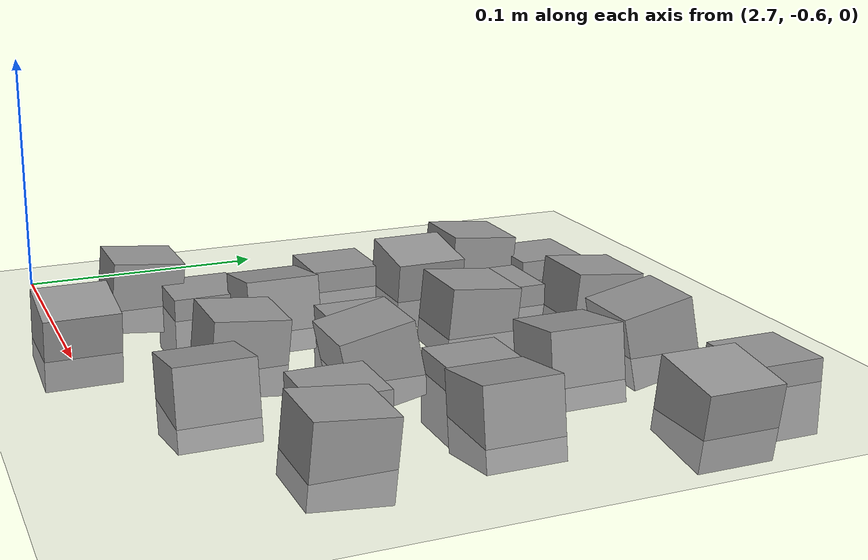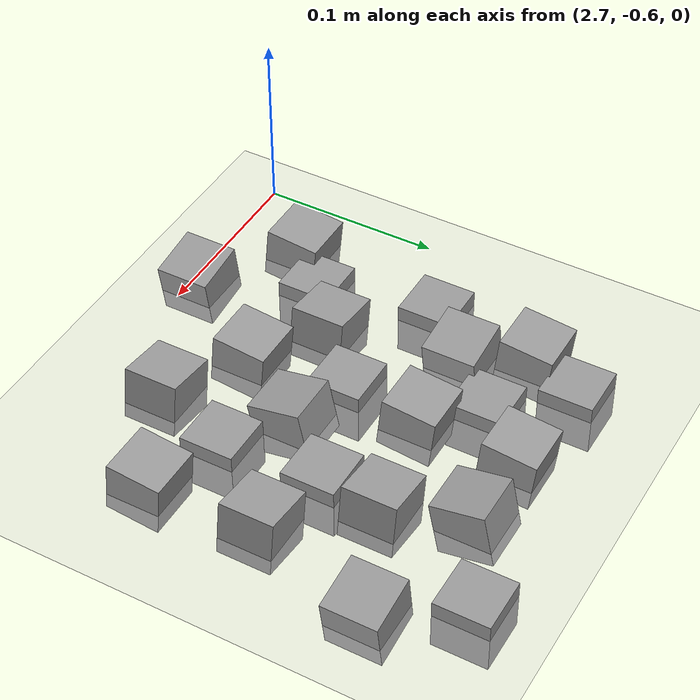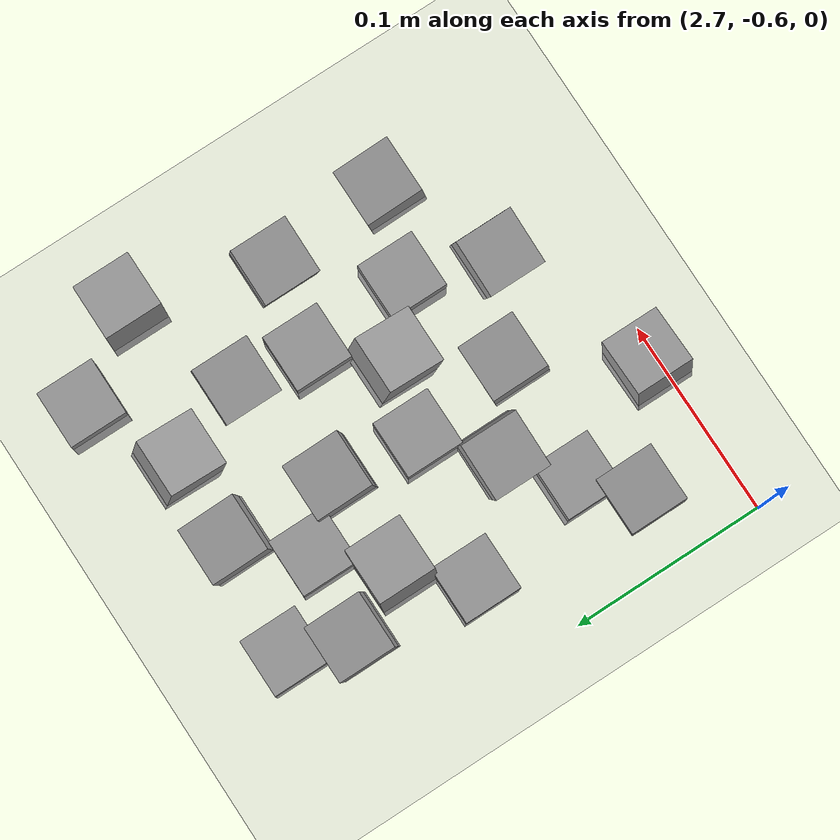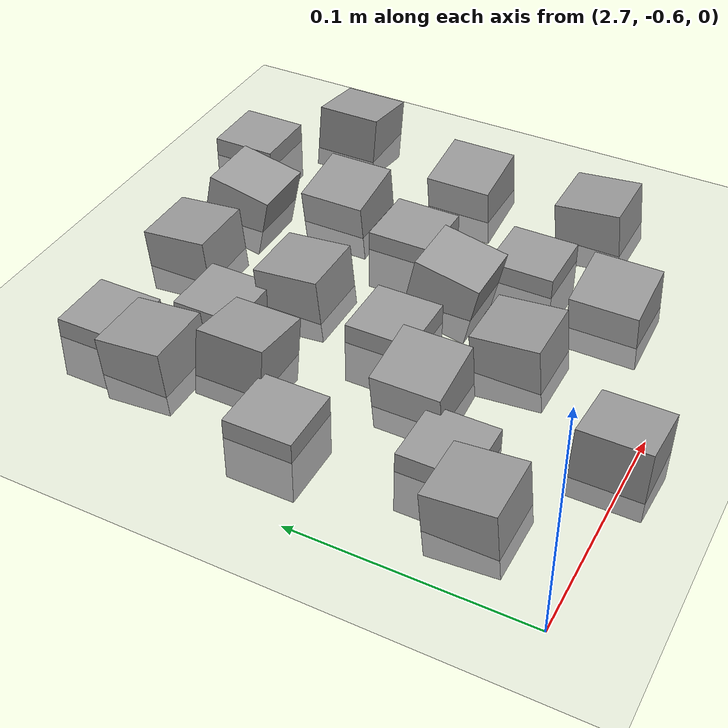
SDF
<sdf version="1.7">
 <world name="default">
  <model name="ground_plane">
   <static>1</static>
   <link name="link">
    <collision name="collision">
     <geometry><plane><normal>0 0 1</normal><size>100 100</size></plane></geometry>
     <surface><friction><ode><mu>100</mu><mu2>50</mu2></ode></friction></surface>
    </collision>
    <visual name="visual">
     <cast_shadows>0</cast_shadows>
     <geometry><plane><normal>0 0 1</normal><size>100 100</size></plane></geometry>
     <material>
      <script><uri>file://media/materials/scripts/gazebo.material</uri><name>Gazebo/Grey</name></script>
     </material>
    </visual>
   </link>
  </model>
  <model name="stone_road_9">
   <link name="link_0_clone_13">
    <inertial>
     <mass>1</mass>
     <inertia>
      <ixx>0.166667</ixx>
      <ixy>0</ixy>
      <ixz>0</ixz>
      <iyy>0.166667</iyy>
      <iyz>0</iyz>
      <izz>0.166667</izz>
     </inertia>
    </inertial>
    <pose>0.107601 -0.134881 0.003778 0.2 -0 0</pose>
    <kinematic>1</kinematic>
    <visual name="visual">
     <geometry><box><size>0.03 0.03 0.03</size></box></geometry>
     <material>
      <lighting>1</lighting>
      <script><uri>file://media/materials/scripts/gazebo.material</uri><name>Gazebo/Grey</name></script>
      <shader type="pixel"><normal_map>__default__</normal_map></shader>
      <ambient>0.3 0.3 0.3 1</ambient>
      <diffuse>0.7 0.7 0.7 1</diffuse>
      <specular>0.01 0.01 0.01 1</specular>
      <emissive>0 0 0 1</emissive>
     </material>
    </visual>
    <collision name="collision">
     <geometry><box><size>0.03 0.03 0.03</size></box></geometry>
     <surface>
      <friction>
       <ode><mu>1</mu><mu2>1</mu2><fdir1>0 0 0</fdir1><slip1>0</slip1><slip2>0</slip2></ode>
       <torsional>
        <coefficient>1</coefficient>
        <patch_radius>0</patch_radius>
        <surface_radius>0</surface_radius>
        <use_patch_radius>1</use_patch_radius>
        <ode><slip>0</slip></ode>
       </torsional>
      </friction>
      <bounce><restitution_coefficient>0</restitution_coefficient><threshold>1e+06</threshold></bounce>
      <contact>
       <collide_without_contact>0</collide_without_contact>
       <collide_without_contact_bitmask>1</collide_without_contact_bitmask>
       <collide_bitmask>1</collide_bitmask>
       <ode>
        <soft_cfm>0</soft_cfm>
        <soft_erp>0.2</soft_erp>
        <kp>1e+13</kp>
        <kd>1</kd>
        <max_vel>0.01</max_vel>
        <min_depth>0</min_depth>
       </ode>
       <bullet>
        <split_impulse>1</split_impulse>
        <split_impulse_penetration_threshold>-0.01</split_impulse_penetration_threshold>
        <soft_cfm>0</soft_cfm>
        <soft_erp>0.2</soft_erp>
        <kp>1e+13</kp>
        <kd>1</kd>
       </bullet>
      </contact>
     </surface>
    </collision>
   </link>
   <link name="link_0_clone_2_clone_0">
    <inertial>
     <mass>1</mass>
     <inertia>
      <ixx>0.166667</ixx>
      <ixy>0</ixy>
      <ixz>0</ixz>
      <iyy>0.166667</iyy>
      <iyz>0</iyz>
      <izz>0.166667</izz>
     </inertia>
    </inertial>
    <pose>0.026852 -0.0813 0.003778 0 0.15 0</pose>
    <kinematic>1</kinematic>
    <visual name="visual">
     <geometry><box><size>0.03 0.03 0.03</size></box></geometry>
     <material>
      <lighting>1</lighting>
      <script><uri>file://media/materials/scripts/gazebo.material</uri><name>Gazebo/Grey</name></script>
      <shader type="pixel"><normal_map>__default__</normal_map></shader>
      <ambient>0.3 0.3 0.3 1</ambient>
      <diffuse>0.7 0.7 0.7 1</diffuse>
      <specular>0.01 0.01 0.01 1</specular>
      <emissive>0 0 0 1</emissive>
     </material>
    </visual>
    <collision name="collision">
     <geometry><box><size>0.03 0.03 0.03</size></box></geometry>
     <surface>
      <friction>
       <ode><mu>1</mu><mu2>1</mu2><fdir1>0 0 0</fdir1><slip1>0</slip1><slip2>0</slip2></ode>
       <torsional>
        <coefficient>1</coefficient>
        <patch_radius>0</patch_radius>
        <surface_radius>0</surface_radius>
        <use_patch_radius>1</use_patch_radius>
        <ode><slip>0</slip></ode>
       </torsional>
      </friction>
      <bounce><restitution_coefficient>0</restitution_coefficient><threshold>1e+06</threshold></bounce>
      <contact>
       <collide_without_contact>0</collide_without_contact>
       <collide_without_contact_bitmask>1</collide_without_contact_bitmask>
       <collide_bitmask>1</collide_bitmask>
       <ode>
        <soft_cfm>0</soft_cfm>
        <soft_erp>0.2</soft_erp>
        <kp>1e+13</kp>
        <kd>1</kd>
        <max_vel>0.01</max_vel>
        <min_depth>0</min_depth>
       </ode>
       <bullet>
        <split_impulse>1</split_impulse>
        <split_impulse_penetration_threshold>-0.01</split_impulse_penetration_threshold>
        <soft_cfm>0</soft_cfm>
        <soft_erp>0.2</soft_erp>
        <kp>1e+13</kp>
        <kd>1</kd>
       </bullet>
      </contact>
     </surface>
    </collision>
   </link>
   <link name="link_0_clone_2_clone_2_clone_13_clone_clone_10">
    <inertial>
     <mass>1</mass>
     <inertia>
      <ixx>0.166667</ixx>
      <ixy>0</ixy>
      <ixz>0</ixz>
      <iyy>0.166667</iyy>
      <iyz>0</iyz>
      <izz>0.166667</izz>
     </inertia>
    </inertial>
    <pose>-0.006825 -0.196489 0.003778 -0.1 0 0</pose>
    <kinematic>1</kinematic>
    <visual name="visual">
     <geometry><box><size>0.03 0.03 0.03</size></box></geometry>
     <material>
      <lighting>1</lighting>
      <script><uri>file://media/materials/scripts/gazebo.material</uri><name>Gazebo/Grey</name></script>
      <shader type="pixel"><normal_map>__default__</normal_map></shader>
      <ambient>0.3 0.3 0.3 1</ambient>
      <diffuse>0.7 0.7 0.7 1</diffuse>
      <specular>0.01 0.01 0.01 1</specular>
      <emissive>0 0 0 1</emissive>
     </material>
    </visual>
    <collision name="collision">
     <geometry><box><size>0.03 0.03 0.03</size></box></geometry>
     <surface>
      <friction>
       <ode><mu>1</mu><mu2>1</mu2><fdir1>0 0 0</fdir1><slip1>0</slip1><slip2>0</slip2></ode>
       <torsional>
        <coefficient>1</coefficient>
        <patch_radius>0</patch_radius>
        <surface_radius>0</surface_radius>
        <use_patch_radius>1</use_patch_radius>
        <ode><slip>0</slip></ode>
       </torsional>
      </friction>
      <bounce><restitution_coefficient>0</restitution_coefficient><threshold>1e+06</threshold></bounce>
      <contact>
       <collide_without_contact>0</collide_without_contact>
       <collide_without_contact_bitmask>1</collide_without_contact_bitmask>
       <collide_bitmask>1</collide_bitmask>
       <ode>
        <soft_cfm>0</soft_cfm>
        <soft_erp>0.2</soft_erp>
        <kp>1e+13</kp>
        <kd>1</kd>
        <max_vel>0.01</max_vel>
        <min_depth>0</min_depth>
       </ode>
       <bullet>
        <split_impulse>1</split_impulse>
        <split_impulse_penetration_threshold>-0.01</split_impulse_penetration_threshold>
        <soft_cfm>0</soft_cfm>
        <soft_erp>0.2</soft_erp>
        <kp>1e+13</kp>
        <kd>1</kd>
       </bullet>
      </contact>
     </surface>
    </collision>
   </link>
   <link name="link_0_clone_2_clone_2_clone_13_clone_clone_11">
    <inertial>
     <mass>1</mass>
     <inertia>
      <ixx>0.166667</ixx>
      <ixy>0</ixy>
      <ixz>0</ixz>
      <iyy>0.166667</iyy>
      <iyz>0</iyz>
      <izz>0.166667</izz>
     </inertia>
    </inertial>
    <pose>0.178889 -0.173779 0.003778 -0.1 0 0</pose>
    <kinematic>1</kinematic>
    <visual name="visual">
     <geometry><box><size>0.03 0.03 0.03</size></box></geometry>
     <material>
      <lighting>1</lighting>
      <script><uri>file://media/materials/scripts/gazebo.material</uri><name>Gazebo/Grey</name></script>
      <shader type="pixel"><normal_map>__default__</normal_map></shader>
      <ambient>0.3 0.3 0.3 1</ambient>
      <diffuse>0.7 0.7 0.7 1</diffuse>
      <specular>0.01 0.01 0.01 1</specular>
      <emissive>0 0 0 1</emissive>
     </material>
    </visual>
    <collision name="collision">
     <geometry><box><size>0.03 0.03 0.03</size></box></geometry>
     <surface>
      <friction>
       <ode><mu>1</mu><mu2>1</mu2><fdir1>0 0 0</fdir1><slip1>0</slip1><slip2>0</slip2></ode>
       <torsional>
        <coefficient>1</coefficient>
        <patch_radius>0</patch_radius>
        <surface_radius>0</surface_radius>
        <use_patch_radius>1</use_patch_radius>
        <ode><slip>0</slip></ode>
       </torsional>
      </friction>
      <bounce><restitution_coefficient>0</restitution_coefficient><threshold>1e+06</threshold></bounce>
      <contact>
       <collide_without_contact>0</collide_without_contact>
       <collide_without_contact_bitmask>1</collide_without_contact_bitmask>
       <collide_bitmask>1</collide_bitmask>
       <ode>
        <soft_cfm>0</soft_cfm>
        <soft_erp>0.2</soft_erp>
        <kp>1e+13</kp>
        <kd>1</kd>
        <max_vel>0.01</max_vel>
        <min_depth>0</min_depth>
       </ode>
       <bullet>
        <split_impulse>1</split_impulse>
        <split_impulse_penetration_threshold>-0.01</split_impulse_penetration_threshold>
        <soft_cfm>0</soft_cfm>
        <soft_erp>0.2</soft_erp>
        <kp>1e+13</kp>
        <kd>1</kd>
       </bullet>
      </contact>
     </surface>
    </collision>
   </link>
   <link name="link_0_clone_2_clone_2_clone_13_clone_clone_12">
    <inertial>
     <mass>1</mass>
     <inertia>
      <ixx>0.166667</ixx>
      <ixy>0</ixy>
      <ixz>0</ixz>
      <iyy>0.166667</iyy>
      <iyz>0</iyz>
      <izz>0.166667</izz>
     </inertia>
    </inertial>
    <pose>0.078701 -0.177208 0.003778 -0.1 0 0</pose>
    <kinematic>1</kinematic>
    <visual name="visual">
     <geometry><box><size>0.03 0.03 0.03</size></box></geometry>
     <material>
      <lighting>1</lighting>
      <script><uri>file://media/materials/scripts/gazebo.material</uri><name>Gazebo/Grey</name></script>
      <shader type="pixel"><normal_map>__default__</normal_map></shader>
      <ambient>0.3 0.3 0.3 1</ambient>
      <diffuse>0.7 0.7 0.7 1</diffuse>
      <specular>0.01 0.01 0.01 1</specular>
      <emissive>0 0 0 1</emissive>
     </material>
    </visual>
    <collision name="collision">
     <geometry><box><size>0.03 0.03 0.03</size></box></geometry>
     <surface>
      <friction>
       <ode><mu>1</mu><mu2>1</mu2><fdir1>0 0 0</fdir1><slip1>0</slip1><slip2>0</slip2></ode>
       <torsional>
        <coefficient>1</coefficient>
        <patch_radius>0</patch_radius>
        <surface_radius>0</surface_radius>
        <use_patch_radius>1</use_patch_radius>
        <ode><slip>0</slip></ode>
       </torsional>
      </friction>
      <bounce><restitution_coefficient>0</restitution_coefficient><threshold>1e+06</threshold></bounce>
      <contact>
       <collide_without_contact>0</collide_without_contact>
       <collide_without_contact_bitmask>1</collide_without_contact_bitmask>
       <collide_bitmask>1</collide_bitmask>
       <ode>
        <soft_cfm>0</soft_cfm>
        <soft_erp>0.2</soft_erp>
        <kp>1e+13</kp>
        <kd>1</kd>
        <max_vel>0.01</max_vel>
        <min_depth>0</min_depth>
       </ode>
       <bullet>
        <split_impulse>1</split_impulse>
        <split_impulse_penetration_threshold>-0.01</split_impulse_penetration_threshold>
        <soft_cfm>0</soft_cfm>
        <soft_erp>0.2</soft_erp>
        <kp>1e+13</kp>
        <kd>1</kd>
       </bullet>
      </contact>
     </surface>
    </collision>
   </link>
   <link name="link_0_clone_2_clone_2_clone_13_clone_clone_16_clone_13">
    <inertial>
     <mass>1</mass>
     <inertia>
      <ixx>0.166667</ixx>
      <ixy>0</ixy>
      <ixz>0</ixz>
      <iyy>0.166667</iyy>
      <iyz>0</iyz>
      <izz>0.166667</izz>
     </inertia>
    </inertial>
    <pose>0.168013 -0.00203 -0.006222 0 -0 0</pose>
    <kinematic>1</kinematic>
    <visual name="visual">
     <geometry><box><size>0.03 0.03 0.03</size></box></geometry>
     <material>
      <lighting>1</lighting>
      <script><uri>file://media/materials/scripts/gazebo.material</uri><name>Gazebo/Grey</name></script>
      <shader type="pixel"><normal_map>__default__</normal_map></shader>
      <ambient>0.3 0.3 0.3 1</ambient>
      <diffuse>0.7 0.7 0.7 1</diffuse>
      <specular>0.01 0.01 0.01 1</specular>
      <emissive>0 0 0 1</emissive>
     </material>
    </visual>
    <collision name="collision">
     <geometry><box><size>0.03 0.03 0.03</size></box></geometry>
     <surface>
      <friction>
       <ode><mu>1</mu><mu2>1</mu2><fdir1>0 0 0</fdir1><slip1>0</slip1><slip2>0</slip2></ode>
       <torsional>
        <coefficient>1</coefficient>
        <patch_radius>0</patch_radius>
        <surface_radius>0</surface_radius>
        <use_patch_radius>1</use_patch_radius>
        <ode><slip>0</slip></ode>
       </torsional>
      </friction>
      <bounce><restitution_coefficient>0</restitution_coefficient><threshold>1e+06</threshold></bounce>
      <contact>
       <collide_without_contact>0</collide_without_contact>
       <collide_without_contact_bitmask>1</collide_without_contact_bitmask>
       <collide_bitmask>1</collide_bitmask>
       <ode>
        <soft_cfm>0</soft_cfm>
        <soft_erp>0.2</soft_erp>
        <kp>1e+13</kp>
        <kd>1</kd>
        <max_vel>0.01</max_vel>
        <min_depth>0</min_depth>
       </ode>
       <bullet>
        <split_impulse>1</split_impulse>
        <split_impulse_penetration_threshold>-0.01</split_impulse_penetration_threshold>
        <soft_cfm>0</soft_cfm>
        <soft_erp>0.2</soft_erp>
        <kp>1e+13</kp>
        <kd>1</kd>
       </bullet>
      </contact>
     </surface>
    </collision>
   </link>
   <link name="link_0_clone_2_clone_2_clone_13_clone_clone_16_clone_14">
    <inertial>
     <mass>1</mass>
     <inertia>
      <ixx>0.166667</ixx>
      <ixy>0</ixy>
      <ixz>0</ixz>
      <iyy>0.166667</iyy>
      <iyz>0</iyz>
      <izz>0.166667</izz>
     </inertia>
    </inertial>
    <pose>0.051911 -0.054424 -0.006222 0 -0 0</pose>
    <kinematic>1</kinematic>
    <visual name="visual">
     <geometry><box><size>0.03 0.03 0.03</size></box></geometry>
     <material>
      <lighting>1</lighting>
      <script><uri>file://media/materials/scripts/gazebo.material</uri><name>Gazebo/Grey</name></script>
      <shader type="pixel"><normal_map>__default__</normal_map></shader>
      <ambient>0.3 0.3 0.3 1</ambient>
      <diffuse>0.7 0.7 0.7 1</diffuse>
      <specular>0.01 0.01 0.01 1</specular>
      <emissive>0 0 0 1</emissive>
     </material>
    </visual>
    <collision name="collision">
     <geometry><box><size>0.03 0.03 0.03</size></box></geometry>
     <surface>
      <friction>
       <ode><mu>1</mu><mu2>1</mu2><fdir1>0 0 0</fdir1><slip1>0</slip1><slip2>0</slip2></ode>
       <torsional>
        <coefficient>1</coefficient>
        <patch_radius>0</patch_radius>
        <surface_radius>0</surface_radius>
        <use_patch_radius>1</use_patch_radius>
        <ode><slip>0</slip></ode>
       </torsional>
      </friction>
      <bounce><restitution_coefficient>0</restitution_coefficient><threshold>1e+06</threshold></bounce>
      <contact>
       <collide_without_contact>0</collide_without_contact>
       <collide_without_contact_bitmask>1</collide_without_contact_bitmask>
       <collide_bitmask>1</collide_bitmask>
       <ode>
        <soft_cfm>0</soft_cfm>
        <soft_erp>0.2</soft_erp>
        <kp>1e+13</kp>
        <kd>1</kd>
        <max_vel>0.01</max_vel>
        <min_depth>0</min_depth>
       </ode>
       <bullet>
        <split_impulse>1</split_impulse>
        <split_impulse_penetration_threshold>-0.01</split_impulse_penetration_threshold>
        <soft_cfm>0</soft_cfm>
        <soft_erp>0.2</soft_erp>
        <kp>1e+13</kp>
        <kd>1</kd>
       </bullet>
      </contact>
     </surface>
    </collision>
   </link>
   <link name="link_0_clone_2_clone_2_clone_13_clone_clone_16_clone_15">
    <inertial>
     <mass>1</mass>
     <inertia>
      <ixx>0.166667</ixx>
      <ixy>0</ixy>
      <ixz>0</ixz>
      <iyy>0.166667</iyy>
      <iyz>0</iyz>
      <izz>0.166667</izz>
     </inertia>
    </inertial>
    <pose>0.133032 -0.103459 -0.006222 0 -0 0</pose>
    <kinematic>1</kinematic>
    <visual name="visual">
     <geometry><box><size>0.03 0.03 0.03</size></box></geometry>
     <material>
      <lighting>1</lighting>
      <script><uri>file://media/materials/scripts/gazebo.material</uri><name>Gazebo/Grey</name></script>
      <shader type="pixel"><normal_map>__default__</normal_map></shader>
      <ambient>0.3 0.3 0.3 1</ambient>
      <diffuse>0.7 0.7 0.7 1</diffuse>
      <specular>0.01 0.01 0.01 1</specular>
      <emissive>0 0 0 1</emissive>
     </material>
    </visual>
    <collision name="collision">
     <geometry><box><size>0.03 0.03 0.03</size></box></geometry>
     <surface>
      <friction>
       <ode><mu>1</mu><mu2>1</mu2><fdir1>0 0 0</fdir1><slip1>0</slip1><slip2>0</slip2></ode>
       <torsional>
        <coefficient>1</coefficient>
        <patch_radius>0</patch_radius>
        <surface_radius>0</surface_radius>
        <use_patch_radius>1</use_patch_radius>
        <ode><slip>0</slip></ode>
       </torsional>
      </friction>
      <bounce><restitution_coefficient>0</restitution_coefficient><threshold>1e+06</threshold></bounce>
      <contact>
       <collide_without_contact>0</collide_without_contact>
       <collide_without_contact_bitmask>1</collide_without_contact_bitmask>
       <collide_bitmask>1</collide_bitmask>
       <ode>
        <soft_cfm>0</soft_cfm>
        <soft_erp>0.2</soft_erp>
        <kp>1e+13</kp>
        <kd>1</kd>
        <max_vel>0.01</max_vel>
        <min_depth>0</min_depth>
       </ode>
       <bullet>
        <split_impulse>1</split_impulse>
        <split_impulse_penetration_threshold>-0.01</split_impulse_penetration_threshold>
        <soft_cfm>0</soft_cfm>
        <soft_erp>0.2</soft_erp>
        <kp>1e+13</kp>
        <kd>1</kd>
       </bullet>
      </contact>
     </surface>
    </collision>
   </link>
   <link name="link_0_clone_2_clone_2_clone_13_clone_clone_16_clone_16">
    <inertial>
     <mass>1</mass>
     <inertia>
      <ixx>0.166667</ixx>
      <ixy>0</ixy>
      <ixz>0</ixz>
      <iyy>0.166667</iyy>
      <iyz>0</iyz>
      <izz>0.166667</izz>
     </inertia>
    </inertial>
    <pose>0.071475 -0.124425 -0.006222 0 -0 0</pose>
    <kinematic>1</kinematic>
    <visual name="visual">
     <geometry><box><size>0.03 0.03 0.03</size></box></geometry>
     <material>
      <lighting>1</lighting>
      <script><uri>file://media/materials/scripts/gazebo.material</uri><name>Gazebo/Grey</name></script>
      <shader type="pixel"><normal_map>__default__</normal_map></shader>
      <ambient>0.3 0.3 0.3 1</ambient>
      <diffuse>0.7 0.7 0.7 1</diffuse>
      <specular>0.01 0.01 0.01 1</specular>
      <emissive>0 0 0 1</emissive>
     </material>
    </visual>
    <collision name="collision">
     <geometry><box><size>0.03 0.03 0.03</size></box></geometry>
     <surface>
      <friction>
       <ode><mu>1</mu><mu2>1</mu2><fdir1>0 0 0</fdir1><slip1>0</slip1><slip2>0</slip2></ode>
       <torsional>
        <coefficient>1</coefficient>
        <patch_radius>0</patch_radius>
        <surface_radius>0</surface_radius>
        <use_patch_radius>1</use_patch_radius>
        <ode><slip>0</slip></ode>
       </torsional>
      </friction>
      <bounce><restitution_coefficient>0</restitution_coefficient><threshold>1e+06</threshold></bounce>
      <contact>
       <collide_without_contact>0</collide_without_contact>
       <collide_without_contact_bitmask>1</collide_without_contact_bitmask>
       <collide_bitmask>1</collide_bitmask>
       <ode>
        <soft_cfm>0</soft_cfm>
        <soft_erp>0.2</soft_erp>
        <kp>1e+13</kp>
        <kd>1</kd>
        <max_vel>0.01</max_vel>
        <min_depth>0</min_depth>
       </ode>
       <bullet>
        <split_impulse>1</split_impulse>
        <split_impulse_penetration_threshold>-0.01</split_impulse_penetration_threshold>
        <soft_cfm>0</soft_cfm>
        <soft_erp>0.2</soft_erp>
        <kp>1e+13</kp>
        <kd>1</kd>
       </bullet>
      </contact>
     </surface>
    </collision>
   </link>
   <link name="link_0_clone_2_clone_2_clone_13_clone_clone_16_clone_17">
    <inertial>
     <mass>1</mass>
     <inertia>
      <ixx>0.166667</ixx>
      <ixy>0</ixy>
      <ixz>0</ixz>
      <iyy>0.166667</iyy>
      <iyz>0</iyz>
      <izz>0.166667</izz>
     </inertia>
    </inertial>
    <pose>0.014877 -0.175392 -0.006222 0 -0 0</pose>
    <kinematic>1</kinematic>
    <visual name="visual">
     <geometry><box><size>0.03 0.03 0.03</size></box></geometry>
     <material>
      <lighting>1</lighting>
      <script><uri>file://media/materials/scripts/gazebo.material</uri><name>Gazebo/Grey</name></script>
      <shader type="pixel"><normal_map>__default__</normal_map></shader>
      <ambient>0.3 0.3 0.3 1</ambient>
      <diffuse>0.7 0.7 0.7 1</diffuse>
      <specular>0.01 0.01 0.01 1</specular>
      <emissive>0 0 0 1</emissive>
     </material>
    </visual>
    <collision name="collision">
     <geometry><box><size>0.03 0.03 0.03</size></box></geometry>
     <surface>
      <friction>
       <ode><mu>1</mu><mu2>1</mu2><fdir1>0 0 0</fdir1><slip1>0</slip1><slip2>0</slip2></ode>
       <torsional>
        <coefficient>1</coefficient>
        <patch_radius>0</patch_radius>
        <surface_radius>0</surface_radius>
        <use_patch_radius>1</use_patch_radius>
        <ode><slip>0</slip></ode>
       </torsional>
      </friction>
      <bounce><restitution_coefficient>0</restitution_coefficient><threshold>1e+06</threshold></bounce>
      <contact>
       <collide_without_contact>0</collide_without_contact>
       <collide_without_contact_bitmask>1</collide_without_contact_bitmask>
       <collide_bitmask>1</collide_bitmask>
       <ode>
        <soft_cfm>0</soft_cfm>
        <soft_erp>0.2</soft_erp>
        <kp>1e+13</kp>
        <kd>1</kd>
        <max_vel>0.01</max_vel>
        <min_depth>0</min_depth>
       </ode>
       <bullet>
        <split_impulse>1</split_impulse>
        <split_impulse_penetration_threshold>-0.01</split_impulse_penetration_threshold>
        <soft_cfm>0</soft_cfm>
        <soft_erp>0.2</soft_erp>
        <kp>1e+13</kp>
        <kd>1</kd>
       </bullet>
      </contact>
     </surface>
    </collision>
   </link>
   <link name="link_0_clone_2_clone_2_clone_13_clone_clone_16_clone_18">
    <inertial>
     <mass>1</mass>
     <inertia>
      <ixx>0.166667</ixx>
      <ixy>0</ixy>
      <ixz>0</ixz>
      <iyy>0.166667</iyy>
      <iyz>0</iyz>
      <izz>0.166667</izz>
     </inertia>
    </inertial>
    <pose>0.137197 -0.158693 -0.006222 0 -0 0</pose>
    <kinematic>1</kinematic>
    <visual name="visual">
     <geometry><box><size>0.03 0.03 0.03</size></box></geometry>
     <material>
      <lighting>1</lighting>
      <script><uri>file://media/materials/scripts/gazebo.material</uri><name>Gazebo/Grey</name></script>
      <shader type="pixel"><normal_map>__default__</normal_map></shader>
      <ambient>0.3 0.3 0.3 1</ambient>
      <diffuse>0.7 0.7 0.7 1</diffuse>
      <specular>0.01 0.01 0.01 1</specular>
      <emissive>0 0 0 1</emissive>
     </material>
    </visual>
    <collision name="collision">
     <geometry><box><size>0.03 0.03 0.03</size></box></geometry>
     <surface>
      <friction>
       <ode><mu>1</mu><mu2>1</mu2><fdir1>0 0 0</fdir1><slip1>0</slip1><slip2>0</slip2></ode>
       <torsional>
        <coefficient>1</coefficient>
        <patch_radius>0</patch_radius>
        <surface_radius>0</surface_radius>
        <use_patch_radius>1</use_patch_radius>
        <ode><slip>0</slip></ode>
       </torsional>
      </friction>
      <bounce><restitution_coefficient>0</restitution_coefficient><threshold>1e+06</threshold></bounce>
      <contact>
       <collide_without_contact>0</collide_without_contact>
       <collide_without_contact_bitmask>1</collide_without_contact_bitmask>
       <collide_bitmask>1</collide_bitmask>
       <ode>
        <soft_cfm>0</soft_cfm>
        <soft_erp>0.2</soft_erp>
        <kp>1e+13</kp>
        <kd>1</kd>
        <max_vel>0.01</max_vel>
        <min_depth>0</min_depth>
       </ode>
       <bullet>
        <split_impulse>1</split_impulse>
        <split_impulse_penetration_threshold>-0.01</split_impulse_penetration_threshold>
        <soft_cfm>0</soft_cfm>
        <soft_erp>0.2</soft_erp>
        <kp>1e+13</kp>
        <kd>1</kd>
       </bullet>
      </contact>
     </surface>
    </collision>
   </link>
   <link name="link_0_clone_2_clone_2_clone_13_clone_clone_16_clone_6">
    <inertial>
     <mass>1</mass>
     <inertia>
      <ixx>0.166667</ixx>
      <ixy>0</ixy>
      <ixz>0</ixz>
      <iyy>0.166667</iyy>
      <iyz>0</iyz>
      <izz>0.166667</izz>
     </inertia>
    </inertial>
    <pose>0.020774 -0.018727 -0.006222 0 -0 0</pose>
    <kinematic>1</kinematic>
    <visual name="visual">
     <geometry><box><size>0.03 0.03 0.03</size></box></geometry>
     <material>
      <lighting>1</lighting>
      <script><uri>file://media/materials/scripts/gazebo.material</uri><name>Gazebo/Grey</name></script>
      <shader type="pixel"><normal_map>__default__</normal_map></shader>
      <ambient>0.3 0.3 0.3 1</ambient>
      <diffuse>0.7 0.7 0.7 1</diffuse>
      <specular>0.01 0.01 0.01 1</specular>
      <emissive>0 0 0 1</emissive>
     </material>
    </visual>
    <collision name="collision">
     <geometry><box><size>0.03 0.03 0.03</size></box></geometry>
     <surface>
      <friction>
       <ode><mu>1</mu><mu2>1</mu2><fdir1>0 0 0</fdir1><slip1>0</slip1><slip2>0</slip2></ode>
       <torsional>
        <coefficient>1</coefficient>
        <patch_radius>0</patch_radius>
        <surface_radius>0</surface_radius>
        <use_patch_radius>1</use_patch_radius>
        <ode><slip>0</slip></ode>
       </torsional>
      </friction>
      <bounce><restitution_coefficient>0</restitution_coefficient><threshold>1e+06</threshold></bounce>
      <contact>
       <collide_without_contact>0</collide_without_contact>
       <collide_without_contact_bitmask>1</collide_without_contact_bitmask>
       <collide_bitmask>1</collide_bitmask>
       <ode>
        <soft_cfm>0</soft_cfm>
        <soft_erp>0.2</soft_erp>
        <kp>1e+13</kp>
        <kd>1</kd>
        <max_vel>0.01</max_vel>
        <min_depth>0</min_depth>
       </ode>
       <bullet>
        <split_impulse>1</split_impulse>
        <split_impulse_penetration_threshold>-0.01</split_impulse_penetration_threshold>
        <soft_cfm>0</soft_cfm>
        <soft_erp>0.2</soft_erp>
        <kp>1e+13</kp>
        <kd>1</kd>
       </bullet>
      </contact>
     </surface>
    </collision>
   </link>
   <link name="link_0_clone_2_clone_2_clone_13_clone_clone_16_clone_7">
    <inertial>
     <mass>1</mass>
     <inertia>
      <ixx>0.166667</ixx>
      <ixy>0</ixy>
      <ixz>0</ixz>
      <iyy>0.166667</iyy>
      <iyz>0</iyz>
      <izz>0.166667</izz>
     </inertia>
    </inertial>
    <pose>0.000883 -0.109959 -0.006222 0 -0 0</pose>
    <kinematic>1</kinematic>
    <visual name="visual">
     <geometry><box><size>0.03 0.03 0.03</size></box></geometry>
     <material>
      <lighting>1</lighting>
      <script><uri>file://media/materials/scripts/gazebo.material</uri><name>Gazebo/Grey</name></script>
      <shader type="pixel"><normal_map>__default__</normal_map></shader>
      <ambient>0.3 0.3 0.3 1</ambient>
      <diffuse>0.7 0.7 0.7 1</diffuse>
      <specular>0.01 0.01 0.01 1</specular>
      <emissive>0 0 0 1</emissive>
     </material>
    </visual>
    <collision name="collision">
     <geometry><box><size>0.03 0.03 0.03</size></box></geometry>
     <surface>
      <friction>
       <ode><mu>1</mu><mu2>1</mu2><fdir1>0 0 0</fdir1><slip1>0</slip1><slip2>0</slip2></ode>
       <torsional>
        <coefficient>1</coefficient>
        <patch_radius>0</patch_radius>
        <surface_radius>0</surface_radius>
        <use_patch_radius>1</use_patch_radius>
        <ode><slip>0</slip></ode>
       </torsional>
      </friction>
      <bounce><restitution_coefficient>0</restitution_coefficient><threshold>1e+06</threshold></bounce>
      <contact>
       <collide_without_contact>0</collide_without_contact>
       <collide_without_contact_bitmask>1</collide_without_contact_bitmask>
       <collide_bitmask>1</collide_bitmask>
       <ode>
        <soft_cfm>0</soft_cfm>
        <soft_erp>0.2</soft_erp>
        <kp>1e+13</kp>
        <kd>1</kd>
        <max_vel>0.01</max_vel>
        <min_depth>0</min_depth>
       </ode>
       <bullet>
        <split_impulse>1</split_impulse>
        <split_impulse_penetration_threshold>-0.01</split_impulse_penetration_threshold>
        <soft_cfm>0</soft_cfm>
        <soft_erp>0.2</soft_erp>
        <kp>1e+13</kp>
        <kd>1</kd>
       </bullet>
      </contact>
     </surface>
    </collision>
   </link>
   <link name="link_0_clone_2_clone_2_clone_13_clone_clone_4">
    <inertial>
     <mass>1</mass>
     <inertia>
      <ixx>0.166667</ixx>
      <ixy>0</ixy>
      <ixz>0</ixz>
      <iyy>0.166667</iyy>
      <iyz>0</iyz>
      <izz>0.166667</izz>
     </inertia>
    </inertial>
    <pose>0.078198 -0.024053 0.003778 -0.1 0 0</pose>
    <kinematic>1</kinematic>
    <visual name="visual">
     <geometry><box><size>0.03 0.03 0.03</size></box></geometry>
     <material>
      <lighting>1</lighting>
      <script><uri>file://media/materials/scripts/gazebo.material</uri><name>Gazebo/Grey</name></script>
      <shader type="pixel"><normal_map>__default__</normal_map></shader>
      <ambient>0.3 0.3 0.3 1</ambient>
      <diffuse>0.7 0.7 0.7 1</diffuse>
      <specular>0.01 0.01 0.01 1</specular>
      <emissive>0 0 0 1</emissive>
     </material>
    </visual>
    <collision name="collision">
     <geometry><box><size>0.03 0.03 0.03</size></box></geometry>
     <surface>
      <friction>
       <ode><mu>1</mu><mu2>1</mu2><fdir1>0 0 0</fdir1><slip1>0</slip1><slip2>0</slip2></ode>
       <torsional>
        <coefficient>1</coefficient>
        <patch_radius>0</patch_radius>
        <surface_radius>0</surface_radius>
        <use_patch_radius>1</use_patch_radius>
        <ode><slip>0</slip></ode>
       </torsional>
      </friction>
      <bounce><restitution_coefficient>0</restitution_coefficient><threshold>1e+06</threshold></bounce>
      <contact>
       <collide_without_contact>0</collide_without_contact>
       <collide_without_contact_bitmask>1</collide_without_contact_bitmask>
       <collide_bitmask>1</collide_bitmask>
       <ode>
        <soft_cfm>0</soft_cfm>
        <soft_erp>0.2</soft_erp>
        <kp>1e+13</kp>
        <kd>1</kd>
        <max_vel>0.01</max_vel>
        <min_depth>0</min_depth>
       </ode>
       <bullet>
        <split_impulse>1</split_impulse>
        <split_impulse_penetration_threshold>-0.01</split_impulse_penetration_threshold>
        <soft_cfm>0</soft_cfm>
        <soft_erp>0.2</soft_erp>
        <kp>1e+13</kp>
        <kd>1</kd>
       </bullet>
      </contact>
     </surface>
    </collision>
   </link>
   <link name="link_0_clone_2_clone_2_clone_13_clone_clone_5">
    <inertial>
     <mass>1</mass>
     <inertia>
      <ixx>0.166667</ixx>
      <ixy>0</ixy>
      <ixz>0</ixz>
      <iyy>0.166667</iyy>
      <iyz>0</iyz>
      <izz>0.166667</izz>
     </inertia>
    </inertial>
    <pose>0.076743 -0.079785 0.003778 -0.1 0 0</pose>
    <kinematic>1</kinematic>
    <visual name="visual">
     <geometry><box><size>0.03 0.03 0.03</size></box></geometry>
     <material>
      <lighting>1</lighting>
      <script><uri>file://media/materials/scripts/gazebo.material</uri><name>Gazebo/Grey</name></script>
      <shader type="pixel"><normal_map>__default__</normal_map></shader>
      <ambient>0.3 0.3 0.3 1</ambient>
      <diffuse>0.7 0.7 0.7 1</diffuse>
      <specular>0.01 0.01 0.01 1</specular>
      <emissive>0 0 0 1</emissive>
     </material>
    </visual>
    <collision name="collision">
     <geometry><box><size>0.03 0.03 0.03</size></box></geometry>
     <surface>
      <friction>
       <ode><mu>1</mu><mu2>1</mu2><fdir1>0 0 0</fdir1><slip1>0</slip1><slip2>0</slip2></ode>
       <torsional>
        <coefficient>1</coefficient>
        <patch_radius>0</patch_radius>
        <surface_radius>0</surface_radius>
        <use_patch_radius>1</use_patch_radius>
        <ode><slip>0</slip></ode>
       </torsional>
      </friction>
      <bounce><restitution_coefficient>0</restitution_coefficient><threshold>1e+06</threshold></bounce>
      <contact>
       <collide_without_contact>0</collide_without_contact>
       <collide_without_contact_bitmask>1</collide_without_contact_bitmask>
       <collide_bitmask>1</collide_bitmask>
       <ode>
        <soft_cfm>0</soft_cfm>
        <soft_erp>0.2</soft_erp>
        <kp>1e+13</kp>
        <kd>1</kd>
        <max_vel>0.01</max_vel>
        <min_depth>0</min_depth>
       </ode>
       <bullet>
        <split_impulse>1</split_impulse>
        <split_impulse_penetration_threshold>-0.01</split_impulse_penetration_threshold>
        <soft_cfm>0</soft_cfm>
        <soft_erp>0.2</soft_erp>
        <kp>1e+13</kp>
        <kd>1</kd>
       </bullet>
      </contact>
     </surface>
    </collision>
   </link>
   <link name="link_0_clone_2_clone_2_clone_13_clone_clone_6">
    <inertial>
     <mass>1</mass>
     <inertia>
      <ixx>0.166667</ixx>
      <ixy>0</ixy>
      <ixz>0</ixz>
      <iyy>0.166667</iyy>
      <iyz>0</iyz>
      <izz>0.166667</izz>
     </inertia>
    </inertial>
    <pose>0.009445 -0.048118 0.003778 -0.1 0 0</pose>
    <kinematic>1</kinematic>
    <visual name="visual">
     <geometry><box><size>0.03 0.03 0.03</size></box></geometry>
     <material>
      <lighting>1</lighting>
      <script><uri>file://media/materials/scripts/gazebo.material</uri><name>Gazebo/Grey</name></script>
      <shader type="pixel"><normal_map>__default__</normal_map></shader>
      <ambient>0.3 0.3 0.3 1</ambient>
      <diffuse>0.7 0.7 0.7 1</diffuse>
      <specular>0.01 0.01 0.01 1</specular>
      <emissive>0 0 0 1</emissive>
     </material>
    </visual>
    <collision name="collision">
     <geometry><box><size>0.03 0.03 0.03</size></box></geometry>
     <surface>
      <friction>
       <ode><mu>1</mu><mu2>1</mu2><fdir1>0 0 0</fdir1><slip1>0</slip1><slip2>0</slip2></ode>
       <torsional>
        <coefficient>1</coefficient>
        <patch_radius>0</patch_radius>
        <surface_radius>0</surface_radius>
        <use_patch_radius>1</use_patch_radius>
        <ode><slip>0</slip></ode>
       </torsional>
      </friction>
      <bounce><restitution_coefficient>0</restitution_coefficient><threshold>1e+06</threshold></bounce>
      <contact>
       <collide_without_contact>0</collide_without_contact>
       <collide_without_contact_bitmask>1</collide_without_contact_bitmask>
       <collide_bitmask>1</collide_bitmask>
       <ode>
        <soft_cfm>0</soft_cfm>
        <soft_erp>0.2</soft_erp>
        <kp>1e+13</kp>
        <kd>1</kd>
        <max_vel>0.01</max_vel>
        <min_depth>0</min_depth>
       </ode>
       <bullet>
        <split_impulse>1</split_impulse>
        <split_impulse_penetration_threshold>-0.01</split_impulse_penetration_threshold>
        <soft_cfm>0</soft_cfm>
        <soft_erp>0.2</soft_erp>
        <kp>1e+13</kp>
        <kd>1</kd>
       </bullet>
      </contact>
     </surface>
    </collision>
   </link>
   <link name="link_0_clone_2_clone_2_clone_4">
    <inertial>
     <mass>1</mass>
     <inertia>
      <ixx>0.166667</ixx>
      <ixy>0</ixy>
      <ixz>0</ixz>
      <iyy>0.166667</iyy>
      <iyz>0</iyz>
      <izz>0.166667</izz>
     </inertia>
    </inertial>
    <pose>0.042048 -0.151731 0.003778 0 -0.15 0</pose>
    <kinematic>1</kinematic>
    <visual name="visual">
     <geometry><box><size>0.03 0.03 0.03</size></box></geometry>
     <material>
      <lighting>1</lighting>
      <script><uri>file://media/materials/scripts/gazebo.material</uri><name>Gazebo/Grey</name></script>
      <shader type="pixel"><normal_map>__default__</normal_map></shader>
      <ambient>0.3 0.3 0.3 1</ambient>
      <diffuse>0.7 0.7 0.7 1</diffuse>
      <specular>0.01 0.01 0.01 1</specular>
      <emissive>0 0 0 1</emissive>
     </material>
    </visual>
    <collision name="collision">
     <geometry><box><size>0.03 0.03 0.03</size></box></geometry>
     <surface>
      <friction>
       <ode><mu>1</mu><mu2>1</mu2><fdir1>0 0 0</fdir1><slip1>0</slip1><slip2>0</slip2></ode>
       <torsional>
        <coefficient>1</coefficient>
        <patch_radius>0</patch_radius>
        <surface_radius>0</surface_radius>
        <use_patch_radius>1</use_patch_radius>
        <ode><slip>0</slip></ode>
       </torsional>
      </friction>
      <bounce><restitution_coefficient>0</restitution_coefficient><threshold>1e+06</threshold></bounce>
      <contact>
       <collide_without_contact>0</collide_without_contact>
       <collide_without_contact_bitmask>1</collide_without_contact_bitmask>
       <collide_bitmask>1</collide_bitmask>
       <ode>
        <soft_cfm>0</soft_cfm>
        <soft_erp>0.2</soft_erp>
        <kp>1e+13</kp>
        <kd>1</kd>
        <max_vel>0.01</max_vel>
        <min_depth>0</min_depth>
       </ode>
       <bullet>
        <split_impulse>1</split_impulse>
        <split_impulse_penetration_threshold>-0.01</split_impulse_penetration_threshold>
        <soft_cfm>0</soft_cfm>
        <soft_erp>0.2</soft_erp>
        <kp>1e+13</kp>
        <kd>1</kd>
       </bullet>
      </contact>
     </surface>
    </collision>
   </link>
   <link name="link_0_clone_2_clone_2_clone_5">
    <inertial>
     <mass>1</mass>
     <inertia>
      <ixx>0.166667</ixx>
      <ixy>0</ixy>
      <ixz>0</ixz>
      <iyy>0.166667</iyy>
      <iyz>0</iyz>
      <izz>0.166667</izz>
     </inertia>
    </inertial>
    <pose>0.13842 -0.067468 0.003778 0 -0.15 0</pose>
    <kinematic>1</kinematic>
    <visual name="visual">
     <geometry><box><size>0.03 0.03 0.03</size></box></geometry>
     <material>
      <lighting>1</lighting>
      <script><uri>file://media/materials/scripts/gazebo.material</uri><name>Gazebo/Grey</name></script>
      <shader type="pixel"><normal_map>__default__</normal_map></shader>
      <ambient>0.3 0.3 0.3 1</ambient>
      <diffuse>0.7 0.7 0.7 1</diffuse>
      <specular>0.01 0.01 0.01 1</specular>
      <emissive>0 0 0 1</emissive>
     </material>
    </visual>
    <collision name="collision">
     <geometry><box><size>0.03 0.03 0.03</size></box></geometry>
     <surface>
      <friction>
       <ode><mu>1</mu><mu2>1</mu2><fdir1>0 0 0</fdir1><slip1>0</slip1><slip2>0</slip2></ode>
       <torsional>
        <coefficient>1</coefficient>
        <patch_radius>0</patch_radius>
        <surface_radius>0</surface_radius>
        <use_patch_radius>1</use_patch_radius>
        <ode><slip>0</slip></ode>
       </torsional>
      </friction>
      <bounce><restitution_coefficient>0</restitution_coefficient><threshold>1e+06</threshold></bounce>
      <contact>
       <collide_without_contact>0</collide_without_contact>
       <collide_without_contact_bitmask>1</collide_without_contact_bitmask>
       <collide_bitmask>1</collide_bitmask>
       <ode>
        <soft_cfm>0</soft_cfm>
        <soft_erp>0.2</soft_erp>
        <kp>1e+13</kp>
        <kd>1</kd>
        <max_vel>0.01</max_vel>
        <min_depth>0</min_depth>
       </ode>
       <bullet>
        <split_impulse>1</split_impulse>
        <split_impulse_penetration_threshold>-0.01</split_impulse_penetration_threshold>
        <soft_cfm>0</soft_cfm>
        <soft_erp>0.2</soft_erp>
        <kp>1e+13</kp>
        <kd>1</kd>
       </bullet>
      </contact>
     </surface>
    </collision>
   </link>
   <link name="link_0_clone_2_clone_2_clone_7">
    <inertial>
     <mass>1</mass>
     <inertia>
      <ixx>0.166667</ixx>
      <ixy>0</ixy>
      <ixz>0</ixz>
      <iyy>0.166667</iyy>
      <iyz>0</iyz>
      <izz>0.166667</izz>
     </inertia>
    </inertial>
    <pose>0.175499 -0.112442 0.003778 0 -0.15 0</pose>
    <kinematic>1</kinematic>
    <visual name="visual">
     <geometry><box><size>0.03 0.03 0.03</size></box></geometry>
     <material>
      <lighting>1</lighting>
      <script><uri>file://media/materials/scripts/gazebo.material</uri><name>Gazebo/Grey</name></script>
      <shader type="pixel"><normal_map>__default__</normal_map></shader>
      <ambient>0.3 0.3 0.3 1</ambient>
      <diffuse>0.7 0.7 0.7 1</diffuse>
      <specular>0.01 0.01 0.01 1</specular>
      <emissive>0 0 0 1</emissive>
     </material>
    </visual>
    <collision name="collision">
     <geometry><box><size>0.03 0.03 0.03</size></box></geometry>
     <surface>
      <friction>
       <ode><mu>1</mu><mu2>1</mu2><fdir1>0 0 0</fdir1><slip1>0</slip1><slip2>0</slip2></ode>
       <torsional>
        <coefficient>1</coefficient>
        <patch_radius>0</patch_radius>
        <surface_radius>0</surface_radius>
        <use_patch_radius>1</use_patch_radius>
        <ode><slip>0</slip></ode>
       </torsional>
      </friction>
      <bounce><restitution_coefficient>0</restitution_coefficient><threshold>1e+06</threshold></bounce>
      <contact>
       <collide_without_contact>0</collide_without_contact>
       <collide_without_contact_bitmask>1</collide_without_contact_bitmask>
       <collide_bitmask>1</collide_bitmask>
       <ode>
        <soft_cfm>0</soft_cfm>
        <soft_erp>0.2</soft_erp>
        <kp>1e+13</kp>
        <kd>1</kd>
        <max_vel>0.01</max_vel>
        <min_depth>0</min_depth>
       </ode>
       <bullet>
        <split_impulse>1</split_impulse>
        <split_impulse_penetration_threshold>-0.01</split_impulse_penetration_threshold>
        <soft_cfm>0</soft_cfm>
        <soft_erp>0.2</soft_erp>
        <kp>1e+13</kp>
        <kd>1</kd>
       </bullet>
      </contact>
     </surface>
    </collision>
   </link>
   <link name="link_0_clone_2_clone_2_clone_8">
    <inertial>
     <mass>1</mass>
     <inertia>
      <ixx>0.166667</ixx>
      <ixy>0</ixy>
      <ixz>0</ixz>
      <iyy>0.166667</iyy>
      <iyz>0</iyz>
      <izz>0.166667</izz>
     </inertia>
    </inertial>
    <pose>0.122141 -0.201696 0.003778 0 -0.15 0</pose>
    <kinematic>1</kinematic>
    <visual name="visual">
     <geometry><box><size>0.03 0.03 0.03</size></box></geometry>
     <material>
      <lighting>1</lighting>
      <script><uri>file://media/materials/scripts/gazebo.material</uri><name>Gazebo/Grey</name></script>
      <shader type="pixel"><normal_map>__default__</normal_map></shader>
      <ambient>0.3 0.3 0.3 1</ambient>
      <diffuse>0.7 0.7 0.7 1</diffuse>
      <specular>0.01 0.01 0.01 1</specular>
      <emissive>0 0 0 1</emissive>
     </material>
    </visual>
    <collision name="collision">
     <geometry><box><size>0.03 0.03 0.03</size></box></geometry>
     <surface>
      <friction>
       <ode><mu>1</mu><mu2>1</mu2><fdir1>0 0 0</fdir1><slip1>0</slip1><slip2>0</slip2></ode>
       <torsional>
        <coefficient>1</coefficient>
        <patch_radius>0</patch_radius>
        <surface_radius>0</surface_radius>
        <use_patch_radius>1</use_patch_radius>
        <ode><slip>0</slip></ode>
       </torsional>
      </friction>
      <bounce><restitution_coefficient>0</restitution_coefficient><threshold>1e+06</threshold></bounce>
      <contact>
       <collide_without_contact>0</collide_without_contact>
       <collide_without_contact_bitmask>1</collide_without_contact_bitmask>
       <collide_bitmask>1</collide_bitmask>
       <ode>
        <soft_cfm>0</soft_cfm>
        <soft_erp>0.2</soft_erp>
        <kp>1e+13</kp>
        <kd>1</kd>
        <max_vel>0.01</max_vel>
        <min_depth>0</min_depth>
       </ode>
       <bullet>
        <split_impulse>1</split_impulse>
        <split_impulse_penetration_threshold>-0.01</split_impulse_penetration_threshold>
        <soft_cfm>0</soft_cfm>
        <soft_erp>0.2</soft_erp>
        <kp>1e+13</kp>
        <kd>1</kd>
       </bullet>
      </contact>
     </surface>
    </collision>
   </link>
   <link name="link_0_clone_2_clone_7">
    <inertial>
     <mass>1</mass>
     <inertia>
      <ixx>0.166667</ixx>
      <ixy>0</ixy>
      <ixz>0</ixz>
      <iyy>0.166667</iyy>
      <iyz>0</iyz>
      <izz>0.166667</izz>
     </inertia>
    </inertial>
    <pose>0.04255 -0.232691 0.003778 0 0.15 0</pose>
    <kinematic>1</kinematic>
    <visual name="visual">
     <geometry><box><size>0.03 0.03 0.03</size></box></geometry>
     <material>
      <lighting>1</lighting>
      <script><uri>file://media/materials/scripts/gazebo.material</uri><name>Gazebo/Grey</name></script>
      <shader type="pixel"><normal_map>__default__</normal_map></shader>
      <ambient>0.3 0.3 0.3 1</ambient>
      <diffuse>0.7 0.7 0.7 1</diffuse>
      <specular>0.01 0.01 0.01 1</specular>
      <emissive>0 0 0 1</emissive>
     </material>
    </visual>
    <collision name="collision">
     <geometry><box><size>0.03 0.03 0.03</size></box></geometry>
     <surface>
      <friction>
       <ode><mu>1</mu><mu2>1</mu2><fdir1>0 0 0</fdir1><slip1>0</slip1><slip2>0</slip2></ode>
       <torsional>
        <coefficient>1</coefficient>
        <patch_radius>0</patch_radius>
        <surface_radius>0</surface_radius>
        <use_patch_radius>1</use_patch_radius>
        <ode><slip>0</slip></ode>
       </torsional>
      </friction>
      <bounce><restitution_coefficient>0</restitution_coefficient><threshold>1e+06</threshold></bounce>
      <contact>
       <collide_without_contact>0</collide_without_contact>
       <collide_without_contact_bitmask>1</collide_without_contact_bitmask>
       <collide_bitmask>1</collide_bitmask>
       <ode>
        <soft_cfm>0</soft_cfm>
        <soft_erp>0.2</soft_erp>
        <kp>1e+13</kp>
        <kd>1</kd>
        <max_vel>0.01</max_vel>
        <min_depth>0</min_depth>
       </ode>
       <bullet>
        <split_impulse>1</split_impulse>
        <split_impulse_penetration_threshold>-0.01</split_impulse_penetration_threshold>
        <soft_cfm>0</soft_cfm>
        <soft_erp>0.2</soft_erp>
        <kp>1e+13</kp>
        <kd>1</kd>
       </bullet>
      </contact>
     </surface>
    </collision>
   </link>
   <link name="link_0_clone_2_clone_8">
    <inertial>
     <mass>1</mass>
     <inertia>
      <ixx>0.166667</ixx>
      <ixy>0</ixy>
      <ixz>0</ixz>
      <iyy>0.166667</iyy>
      <iyz>0</iyz>
      <izz>0.166667</izz>
     </inertia>
    </inertial>
    <pose>0.197388 -0.042712 0.003778 0 0.15 0</pose>
    <kinematic>1</kinematic>
    <visual name="visual">
     <geometry><box><size>0.03 0.03 0.03</size></box></geometry>
     <material>
      <lighting>1</lighting>
      <script><uri>file://media/materials/scripts/gazebo.material</uri><name>Gazebo/Grey</name></script>
      <shader type="pixel"><normal_map>__default__</normal_map></shader>
      <ambient>0.3 0.3 0.3 1</ambient>
      <diffuse>0.7 0.7 0.7 1</diffuse>
      <specular>0.01 0.01 0.01 1</specular>
      <emissive>0 0 0 1</emissive>
     </material>
    </visual>
    <collision name="collision">
     <geometry><box><size>0.03 0.03 0.03</size></box></geometry>
     <surface>
      <friction>
       <ode><mu>1</mu><mu2>1</mu2><fdir1>0 0 0</fdir1><slip1>0</slip1><slip2>0</slip2></ode>
       <torsional>
        <coefficient>1</coefficient>
        <patch_radius>0</patch_radius>
        <surface_radius>0</surface_radius>
        <use_patch_radius>1</use_patch_radius>
        <ode><slip>0</slip></ode>
       </torsional>
      </friction>
      <bounce><restitution_coefficient>0</restitution_coefficient><threshold>1e+06</threshold></bounce>
      <contact>
       <collide_without_contact>0</collide_without_contact>
       <collide_without_contact_bitmask>1</collide_without_contact_bitmask>
       <collide_bitmask>1</collide_bitmask>
       <ode>
        <soft_cfm>0</soft_cfm>
        <soft_erp>0.2</soft_erp>
        <kp>1e+13</kp>
        <kd>1</kd>
        <max_vel>0.01</max_vel>
        <min_depth>0</min_depth>
       </ode>
       <bullet>
        <split_impulse>1</split_impulse>
        <split_impulse_penetration_threshold>-0.01</split_impulse_penetration_threshold>
        <soft_cfm>0</soft_cfm>
        <soft_erp>0.2</soft_erp>
        <kp>1e+13</kp>
        <kd>1</kd>
       </bullet>
      </contact>
     </surface>
    </collision>
   </link>
   <link name="link_0_clone_9">
    <inertial>
     <mass>1</mass>
     <inertia>
      <ixx>0.166667</ixx>
      <ixy>0</ixy>
      <ixz>0</ixz>
      <iyy>0.166667</iyy>
      <iyz>0</iyz>
      <izz>0.166667</izz>
     </inertia>
    </inertial>
    <pose>0.122173 -0.025452 0.003778 0.2 -0 0</pose>
    <kinematic>1</kinematic>
    <visual name="visual">
     <geometry><box><size>0.03 0.03 0.03</size></box></geometry>
     <material>
      <lighting>1</lighting>
      <script><uri>file://media/materials/scripts/gazebo.material</uri><name>Gazebo/Grey</name></script>
      <shader type="pixel"><normal_map>__default__</normal_map></shader>
      <ambient>0.3 0.3 0.3 1</ambient>
      <diffuse>0.7 0.7 0.7 1</diffuse>
      <specular>0.01 0.01 0.01 1</specular>
      <emissive>0 0 0 1</emissive>
     </material>
    </visual>
    <collision name="collision">
     <geometry><box><size>0.03 0.03 0.03</size></box></geometry>
     <surface>
      <friction>
       <ode><mu>1</mu><mu2>1</mu2><fdir1>0 0 0</fdir1><slip1>0</slip1><slip2>0</slip2></ode>
       <torsional>
        <coefficient>1</coefficient>
        <patch_radius>0</patch_radius>
        <surface_radius>0</surface_radius>
        <use_patch_radius>1</use_patch_radius>
        <ode><slip>0</slip></ode>
       </torsional>
      </friction>
      <bounce><restitution_coefficient>0</restitution_coefficient><threshold>1e+06</threshold></bounce>
      <contact>
       <collide_without_contact>0</collide_without_contact>
       <collide_without_contact_bitmask>1</collide_without_contact_bitmask>
       <collide_bitmask>1</collide_bitmask>
       <ode>
        <soft_cfm>0</soft_cfm>
        <soft_erp>0.2</soft_erp>
        <kp>1e+13</kp>
        <kd>1</kd>
        <max_vel>0.01</max_vel>
        <min_depth>0</min_depth>
       </ode>
       <bullet>
        <split_impulse>1</split_impulse>
        <split_impulse_penetration_threshold>-0.01</split_impulse_penetration_threshold>
        <soft_cfm>0</soft_cfm>
        <soft_erp>0.2</soft_erp>
        <kp>1e+13</kp>
        <kd>1</kd>
       </bullet>
      </contact>
     </surface>
    </collision>
   </link>
   <static>0</static>
   <pose>2.743 -0.362549 -0 0 -0 0</pose>
  </model>
 </world>
</sdf>
